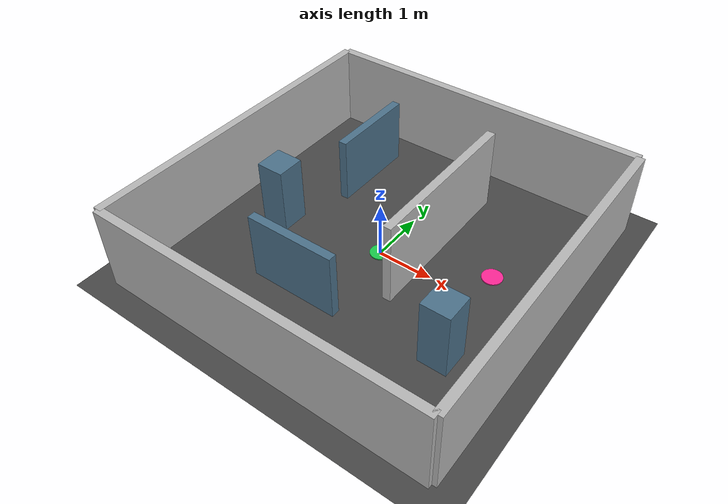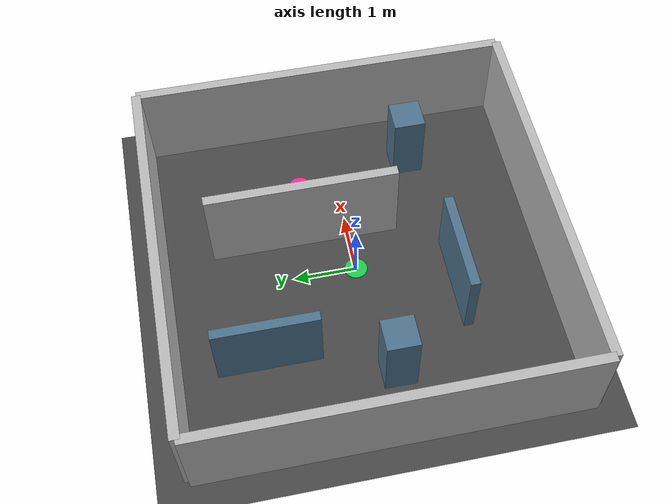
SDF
<?xml version='1.0' encoding='utf-8'?>
<sdf version="1.9">
  <world name="indoor_maze">
    <gravity>0 0 -9.81</gravity>
    <physics name="1ms" type="ignored">
      <max_step_size>0.001</max_step_size>
      <real_time_factor>1</real_time_factor>
    </physics>
    <plugin filename="gz-sim-physics-system" name="gz::sim::systems::Physics" />
    <plugin filename="gz-sim-user-commands-system" name="gz::sim::systems::UserCommands" />
    <plugin filename="gz-sim-scene-broadcaster-system" name="gz::sim::systems::SceneBroadcaster" />
    <plugin filename="gz-sim-sensors-system" name="gz::sim::systems::Sensors">
      <render_engine>ogre2</render_engine>
    </plugin>
    <plugin filename="gz-sim-imu-system" name="gz::sim::systems::Imu" />
    <light type="directional" name="sun">
      <pose>0 0 10 0 0 0</pose>
      <cast_shadows>true</cast_shadows>
      <direction>-0.4 0.2 -0.9</direction>
    </light>
    <model name="floor">
      <static>true</static>
      <link name="link">
        <collision name="collision">
          <geometry>
            <plane>
              <normal>0 0 1</normal>
              <size>20 20</size>
            </plane>
          </geometry>
        </collision>
        <visual name="visual">
          <geometry>
            <plane>
              <normal>0 0 1</normal>
              <size>20 20</size>
            </plane>
          </geometry>
          <material>
            <ambient>0.18 0.18 0.18 1</ambient>
            <diffuse>0.28 0.28 0.28 1</diffuse>
          </material>
        </visual>
      </link>
    </model>
    <model name="wall_north">
      <static>true</static>
      <pose>0 3 0.75 0 0 0</pose>
      <link name="link">
        <collision name="c">
          <geometry>
            <box>
              <size>6 0.15 1.5</size>
            </box>
          </geometry>
        </collision>
        <visual name="v">
          <geometry>
            <box>
              <size>6 0.15 1.5</size>
            </box>
          </geometry>
        </visual>
      </link>
    </model>
    <model name="wall_south">
      <static>true</static>
      <pose>0 -3 0.75 0 0 0</pose>
      <link name="link">
        <collision name="c">
          <geometry>
            <box>
              <size>6 0.15 1.5</size>
            </box>
          </geometry>
        </collision>
        <visual name="v">
          <geometry>
            <box>
              <size>6 0.15 1.5</size>
            </box>
          </geometry>
        </visual>
      </link>
    </model>
    <model name="wall_east">
      <static>true</static>
      <pose>3 0 0.75 0 0 0</pose>
      <link name="link">
        <collision name="c">
          <geometry>
            <box>
              <size>0.15 6 1.5</size>
            </box>
          </geometry>
        </collision>
        <visual name="v">
          <geometry>
            <box>
              <size>0.15 6 1.5</size>
            </box>
          </geometry>
        </visual>
      </link>
    </model>
    <model name="wall_west">
      <static>true</static>
      <pose>-3 0 0.75 0 0 0</pose>
      <link name="link">
        <collision name="c">
          <geometry>
            <box>
              <size>0.15 6 1.5</size>
            </box>
          </geometry>
        </collision>
        <visual name="v">
          <geometry>
            <box>
              <size>0.15 6 1.5</size>
            </box>
          </geometry>
        </visual>
      </link>
    </model>
    <model name="divider">
      <static>true</static>
      <pose>0.7 0.7 0.75 0 0 0</pose>
      <link name="link">
        <collision name="c">
          <geometry>
            <box>
              <size>0.15 3 1.5</size>
            </box>
          </geometry>
        </collision>
        <visual name="v">
          <geometry>
            <box>
              <size>0.15 3 1.5</size>
            </box>
          </geometry>
        </visual>
      </link>
    </model>
    <model name="north_partition">
      <static>true</static>
      <pose>-1.4 1.6 .6 0 0 0</pose>
      <link name="link">
        <collision name="c">
          <geometry>
            <box>
              <size>0.15 1.6 1.2</size>
            </box>
          </geometry>
        </collision>
        <visual name="v">
          <geometry>
            <box>
              <size>0.15 1.6 1.2</size>
            </box>
          </geometry>
          <material>
            <ambient>.3 .45 .55 1</ambient>
            <diffuse>.3 .45 .55 1</diffuse>
          </material>
        </visual>
      </link>
    </model>
    <model name="south_partition">
      <static>true</static>
      <pose>-0.55 -1.5 .6 0 0 0</pose>
      <link name="link">
        <collision name="c">
          <geometry>
            <box>
              <size>1.6 0.15 1.2</size>
            </box>
          </geometry>
        </collision>
        <visual name="v">
          <geometry>
            <box>
              <size>1.6 0.15 1.2</size>
            </box>
          </geometry>
          <material>
            <ambient>.3 .45 .55 1</ambient>
            <diffuse>.3 .45 .55 1</diffuse>
          </material>
        </visual>
      </link>
    </model>
    <model name="west_crate">
      <static>true</static>
      <pose>-1.9 -0.25 .6 0 0 0</pose>
      <link name="link">
        <collision name="c">
          <geometry>
            <box>
              <size>0.5 0.5 1.2</size>
            </box>
          </geometry>
        </collision>
        <visual name="v">
          <geometry>
            <box>
              <size>0.5 0.5 1.2</size>
            </box>
          </geometry>
          <material>
            <ambient>.3 .45 .55 1</ambient>
            <diffuse>.3 .45 .55 1</diffuse>
          </material>
        </visual>
      </link>
    </model>
    <model name="east_crate">
      <static>true</static>
      <pose>2.0 -1.25 .6 0 0 0</pose>
      <link name="link">
        <collision name="c">
          <geometry>
            <box>
              <size>0.5 0.5 1.2</size>
            </box>
          </geometry>
        </collision>
        <visual name="v">
          <geometry>
            <box>
              <size>0.5 0.5 1.2</size>
            </box>
          </geometry>
          <material>
            <ambient>.3 .45 .55 1</ambient>
            <diffuse>.3 .45 .55 1</diffuse>
          </material>
        </visual>
      </link>
    </model>
    <model name="home_marker">
      <static>true</static>
      <pose>0 0 .012 0 0 0</pose>
      <link name="link">
        <visual name="v">
          <geometry>
            <cylinder>
              <radius>.18</radius>
              <length>.02</length>
            </cylinder>
          </geometry>
          <material>
            <ambient>.1 .8 .3 1</ambient>
            <diffuse>.1 .8 .3 1</diffuse>
          </material>
        </visual>
      </link>
    </model>
    <model name="simulated_person_marker">
      <static>true</static>
      <pose>1.8 0.6 .012 0 0 0</pose>
      <link name="link">
        <visual name="v">
          <geometry>
            <cylinder>
              <radius>.18</radius>
              <length>.02</length>
            </cylinder>
          </geometry>
          <material>
            <ambient>1 .15 .6 1</ambient>
            <diffuse>1 .15 .6 1</diffuse>
          </material>
        </visual>
      </link>
    </model>
  </world>
</sdf>
